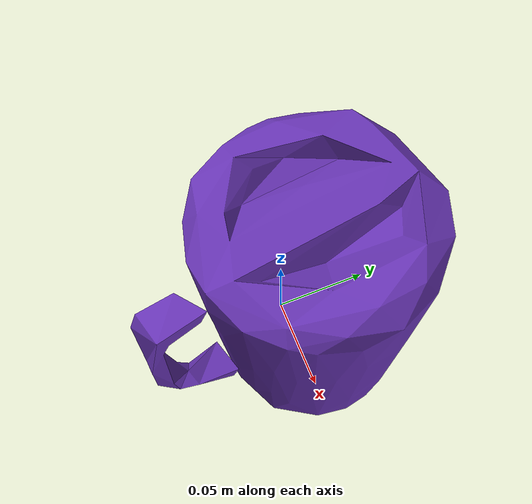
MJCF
<mujoco model="top_watertight_tiny">

  <asset>
    <mesh file="top_watertight_tiny.obj"/>
    <mesh file="top_watertight_tiny_collision_0.obj"/>
    <mesh file="top_watertight_tiny_collision_1.obj"/>
    <mesh file="top_watertight_tiny_collision_2.obj"/>
    <mesh file="top_watertight_tiny_collision_3.obj"/>
    <mesh file="top_watertight_tiny_collision_4.obj"/>
    <mesh file="top_watertight_tiny_collision_5.obj"/>
    <mesh file="top_watertight_tiny_collision_6.obj"/>
    <mesh file="top_watertight_tiny_collision_7.obj"/>
    <mesh file="top_watertight_tiny_collision_8.obj"/>
    <mesh file="top_watertight_tiny_collision_9.obj"/>
    <mesh file="top_watertight_tiny_collision_10.obj"/>
    <mesh file="top_watertight_tiny_collision_11.obj"/>
    <mesh file="top_watertight_tiny_collision_12.obj"/>
    <mesh file="top_watertight_tiny_collision_13.obj"/>
    <mesh file="top_watertight_tiny_collision_14.obj"/>
    <mesh file="top_watertight_tiny_collision_15.obj"/>
    <mesh file="top_watertight_tiny_collision_16.obj"/>
    <mesh file="top_watertight_tiny_collision_17.obj"/>
    <mesh file="top_watertight_tiny_collision_18.obj"/>
    <mesh file="top_watertight_tiny_collision_19.obj"/>
    <mesh file="top_watertight_tiny_collision_20.obj"/>
    <mesh file="top_watertight_tiny_collision_21.obj"/>
    <mesh file="top_watertight_tiny_collision_22.obj"/>
    <mesh file="top_watertight_tiny_collision_23.obj"/>
    <mesh file="top_watertight_tiny_collision_24.obj"/>
    <mesh file="top_watertight_tiny_collision_25.obj"/>
    <mesh file="top_watertight_tiny_collision_26.obj"/>
    <mesh file="top_watertight_tiny_collision_27.obj"/>
    <mesh file="top_watertight_tiny_collision_28.obj"/>
    <mesh file="top_watertight_tiny_collision_29.obj"/>
    <mesh file="top_watertight_tiny_collision_30.obj"/>
    <mesh file="top_watertight_tiny_collision_31.obj"/>
    <mesh file="top_watertight_tiny_collision_32.obj"/>
  </asset>
  <worldbody>
    <body name="top_watertight_tiny">
      <freejoint/>
      <geom solimp="0.90 0.95 0.001" solref="0.02 1.0" density="100" friction="0.95 0.4 0.3" rgba="0.4 0.2 0.7 1" mesh="top_watertight_tiny" group="2" type="mesh" contype="0" conaffinity="0"/>
      <geom solimp="0.90 0.95 0.001" solref="0.02 1.0" density="100" friction="0.95 0.4 0.3" mesh="top_watertight_tiny_collision_0" rgba="0.7916149291294964 0.6537852496804278 0.7585047744697943 1" group="3" type="mesh"/>
      <geom solimp="0.90 0.95 0.001" solref="0.02 1.0" density="100" friction="0.95 0.4 0.3" mesh="top_watertight_tiny_collision_1" rgba="0.6247436070977906 0.26155475518279137 0.5518197774213995 1" group="3" type="mesh"/>
      <geom solimp="0.90 0.95 0.001" solref="0.02 1.0" density="100" friction="0.95 0.4 0.3" mesh="top_watertight_tiny_collision_2" rgba="0.6966644557011061 0.5081507594790414 0.44844782827999585 1" group="3" type="mesh"/>
      <geom solimp="0.90 0.95 0.001" solref="0.02 1.0" density="100" friction="0.95 0.4 0.3" mesh="top_watertight_tiny_collision_3" rgba="0.3074063668676933 0.9444210729155122 0.21090564771360465 1" group="3" type="mesh"/>
      <geom solimp="0.90 0.95 0.001" solref="0.02 1.0" density="100" friction="0.95 0.4 0.3" mesh="top_watertight_tiny_collision_4" rgba="0.6205660288497536 0.22107033415523358 0.8788943790172913 1" group="3" type="mesh"/>
      <geom solimp="0.90 0.95 0.001" solref="0.02 1.0" density="100" friction="0.95 0.4 0.3" mesh="top_watertight_tiny_collision_5" rgba="0.7799585505841244 0.7974291794580824 0.8368374441396542 1" group="3" type="mesh"/>
      <geom solimp="0.90 0.95 0.001" solref="0.02 1.0" density="100" friction="0.95 0.4 0.3" mesh="top_watertight_tiny_collision_6" rgba="0.17545150886649863 0.30990152818580274 0.7294280576649503 1" group="3" type="mesh"/>
      <geom solimp="0.90 0.95 0.001" solref="0.02 1.0" density="100" friction="0.95 0.4 0.3" mesh="top_watertight_tiny_collision_7" rgba="0.7795152224331262 0.8256503879277672 0.15026966547442078 1" group="3" type="mesh"/>
      <geom solimp="0.90 0.95 0.001" solref="0.02 1.0" density="100" friction="0.95 0.4 0.3" mesh="top_watertight_tiny_collision_8" rgba="0.19976303221463554 0.22908111306867784 0.4841588653836635 1" group="3" type="mesh"/>
      <geom solimp="0.90 0.95 0.001" solref="0.02 1.0" density="100" friction="0.95 0.4 0.3" mesh="top_watertight_tiny_collision_9" rgba="0.697566167833727 0.5572158235364576 0.2061058836042441 1" group="3" type="mesh"/>
      <geom solimp="0.90 0.95 0.001" solref="0.02 1.0" density="100" friction="0.95 0.4 0.3" mesh="top_watertight_tiny_collision_10" rgba="0.8708292922367643 0.19336106223687988 0.23918313975077599 1" group="3" type="mesh"/>
      <geom solimp="0.90 0.95 0.001" solref="0.02 1.0" density="100" friction="0.95 0.4 0.3" mesh="top_watertight_tiny_collision_11" rgba="0.056947278547839764 0.7171089928076524 0.7236970732070906 1" group="3" type="mesh"/>
      <geom solimp="0.90 0.95 0.001" solref="0.02 1.0" density="100" friction="0.95 0.4 0.3" mesh="top_watertight_tiny_collision_12" rgba="0.26074215562998315 0.7614270897116704 0.578230929394792 1" group="3" type="mesh"/>
      <geom solimp="0.90 0.95 0.001" solref="0.02 1.0" density="100" friction="0.95 0.4 0.3" mesh="top_watertight_tiny_collision_13" rgba="0.4654321777505286 0.9586406677284401 0.13764007284296043 1" group="3" type="mesh"/>
      <geom solimp="0.90 0.95 0.001" solref="0.02 1.0" density="100" friction="0.95 0.4 0.3" mesh="top_watertight_tiny_collision_14" rgba="0.9018237948372125 0.3498362708744739 0.7518488062864748 1" group="3" type="mesh"/>
      <geom solimp="0.90 0.95 0.001" solref="0.02 1.0" density="100" friction="0.95 0.4 0.3" mesh="top_watertight_tiny_collision_15" rgba="0.7516043303057697 0.06573464027100051 0.7208658440850048 1" group="3" type="mesh"/>
      <geom solimp="0.90 0.95 0.001" solref="0.02 1.0" density="100" friction="0.95 0.4 0.3" mesh="top_watertight_tiny_collision_16" rgba="0.3148735191644324 0.10674684767470721 0.2946566457030013 1" group="3" type="mesh"/>
      <geom solimp="0.90 0.95 0.001" solref="0.02 1.0" density="100" friction="0.95 0.4 0.3" mesh="top_watertight_tiny_collision_17" rgba="0.36597174324075066 0.9525981435181358 0.4570314243260416 1" group="3" type="mesh"/>
      <geom solimp="0.90 0.95 0.001" solref="0.02 1.0" density="100" friction="0.95 0.4 0.3" mesh="top_watertight_tiny_collision_18" rgba="0.1823157956188377 0.5934064214640308 0.3520370401737877 1" group="3" type="mesh"/>
      <geom solimp="0.90 0.95 0.001" solref="0.02 1.0" density="100" friction="0.95 0.4 0.3" mesh="top_watertight_tiny_collision_19" rgba="0.33621724672050113 0.1977631250594949 0.8990234171801894 1" group="3" type="mesh"/>
      <geom solimp="0.90 0.95 0.001" solref="0.02 1.0" density="100" friction="0.95 0.4 0.3" mesh="top_watertight_tiny_collision_20" rgba="0.767520710478375 0.9764561679255367 0.05147024144729617 1" group="3" type="mesh"/>
      <geom solimp="0.90 0.95 0.001" solref="0.02 1.0" density="100" friction="0.95 0.4 0.3" mesh="top_watertight_tiny_collision_21" rgba="0.25932799564865516 0.6085416952271259 0.8044878612639319 1" group="3" type="mesh"/>
      <geom solimp="0.90 0.95 0.001" solref="0.02 1.0" density="100" friction="0.95 0.4 0.3" mesh="top_watertight_tiny_collision_22" rgba="0.49987373251549005 0.024990419999488256 0.8681212518049819 1" group="3" type="mesh"/>
      <geom solimp="0.90 0.95 0.001" solref="0.02 1.0" density="100" friction="0.95 0.4 0.3" mesh="top_watertight_tiny_collision_23" rgba="0.5311179863131607 0.08089140985956444 0.19913387781529113 1" group="3" type="mesh"/>
      <geom solimp="0.90 0.95 0.001" solref="0.02 1.0" density="100" friction="0.95 0.4 0.3" mesh="top_watertight_tiny_collision_24" rgba="0.5199942119260812 0.45456735444076657 0.08325638032575278 1" group="3" type="mesh"/>
      <geom solimp="0.90 0.95 0.001" solref="0.02 1.0" density="100" friction="0.95 0.4 0.3" mesh="top_watertight_tiny_collision_25" rgba="0.5184905784692166 0.040599348563468474 0.40333524858499126 1" group="3" type="mesh"/>
      <geom solimp="0.90 0.95 0.001" solref="0.02 1.0" density="100" friction="0.95 0.4 0.3" mesh="top_watertight_tiny_collision_26" rgba="0.47732360614236324 0.726845370858652 0.5394720212715338 1" group="3" type="mesh"/>
      <geom solimp="0.90 0.95 0.001" solref="0.02 1.0" density="100" friction="0.95 0.4 0.3" mesh="top_watertight_tiny_collision_27" rgba="0.076853366532462 0.3950398444115383 0.8487584090647947 1" group="3" type="mesh"/>
      <geom solimp="0.90 0.95 0.001" solref="0.02 1.0" density="100" friction="0.95 0.4 0.3" mesh="top_watertight_tiny_collision_28" rgba="0.38795940654580596 0.5693131052311731 0.4143956720168992 1" group="3" type="mesh"/>
      <geom solimp="0.90 0.95 0.001" solref="0.02 1.0" density="100" friction="0.95 0.4 0.3" mesh="top_watertight_tiny_collision_29" rgba="0.30117426322301377 0.02308133239828336 0.29999733751267865 1" group="3" type="mesh"/>
      <geom solimp="0.90 0.95 0.001" solref="0.02 1.0" density="100" friction="0.95 0.4 0.3" mesh="top_watertight_tiny_collision_30" rgba="0.067073878416395 0.9593031140180198 0.40591112711429966 1" group="3" type="mesh"/>
      <geom solimp="0.90 0.95 0.001" solref="0.02 1.0" density="100" friction="0.95 0.4 0.3" mesh="top_watertight_tiny_collision_31" rgba="0.030199084345104654 0.910221656658823 0.25209117571477724 1" group="3" type="mesh"/>
      <geom solimp="0.90 0.95 0.001" solref="0.02 1.0" density="100" friction="0.95 0.4 0.3" mesh="top_watertight_tiny_collision_32" rgba="0.24009591265985286 0.7962026081801833 0.0991713985053101 1" group="3" type="mesh"/>
    </body>
  </worldbody>
</mujoco>
